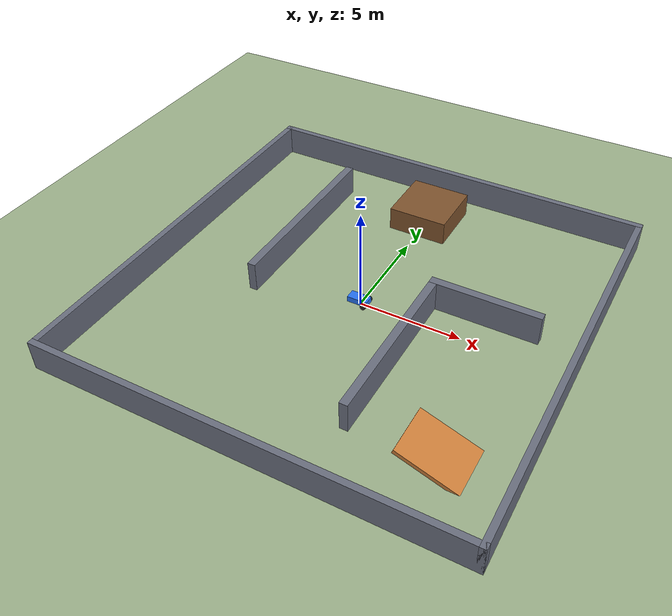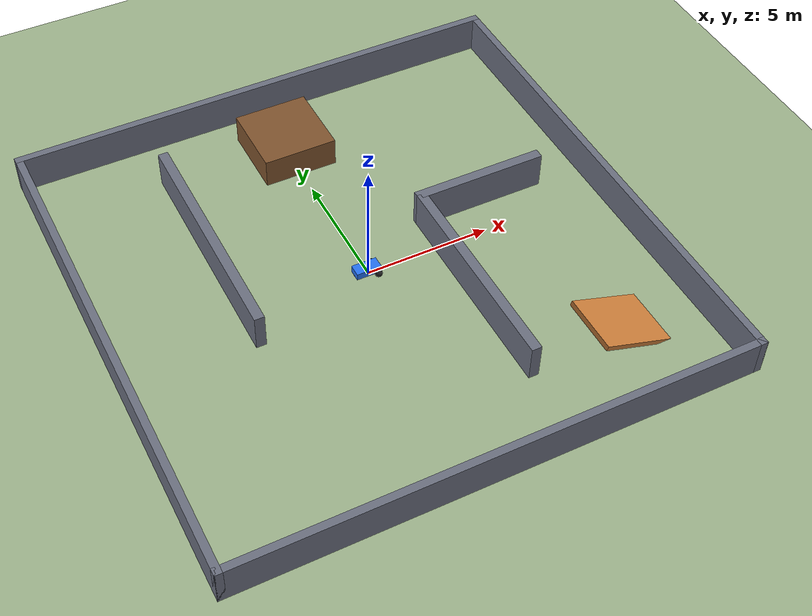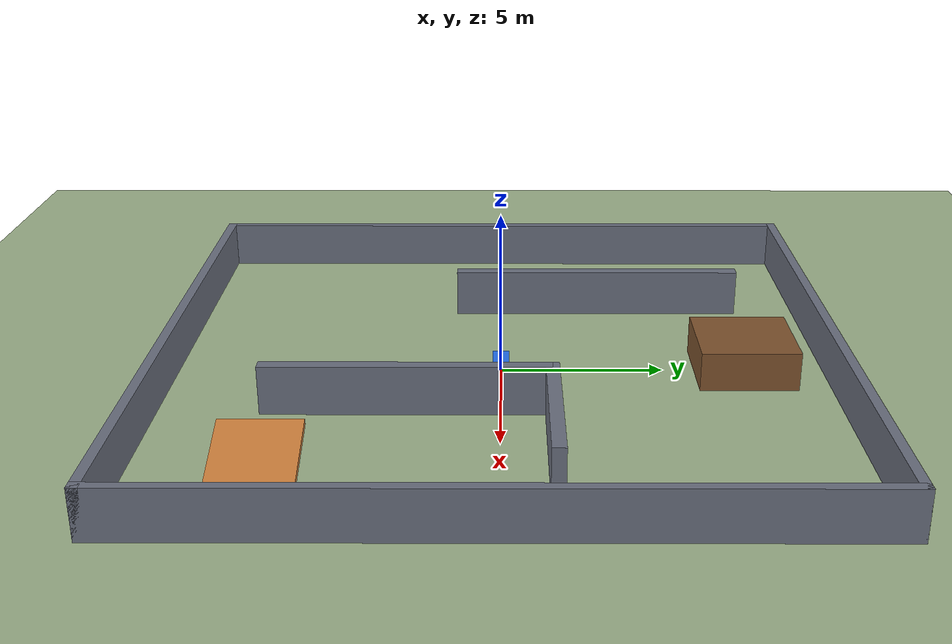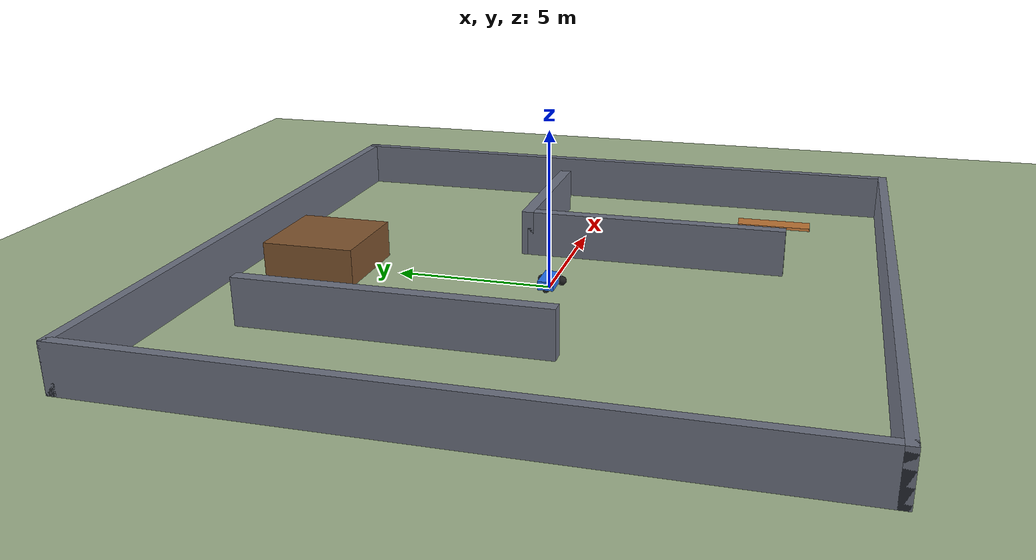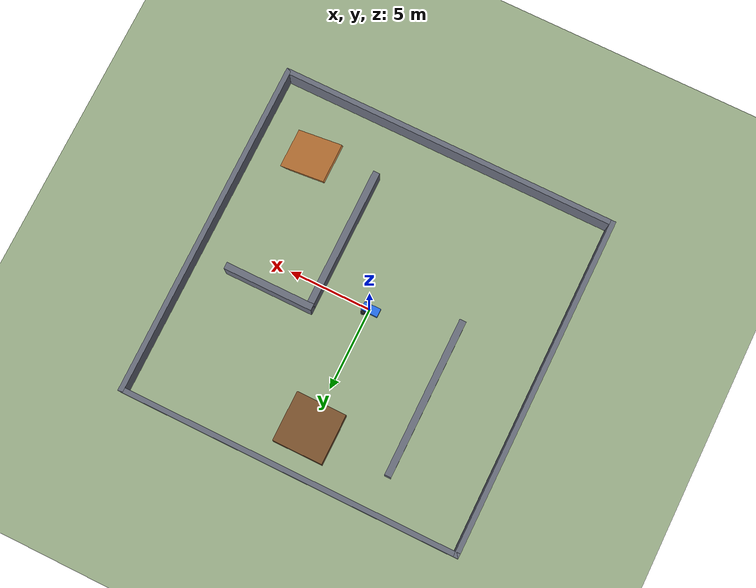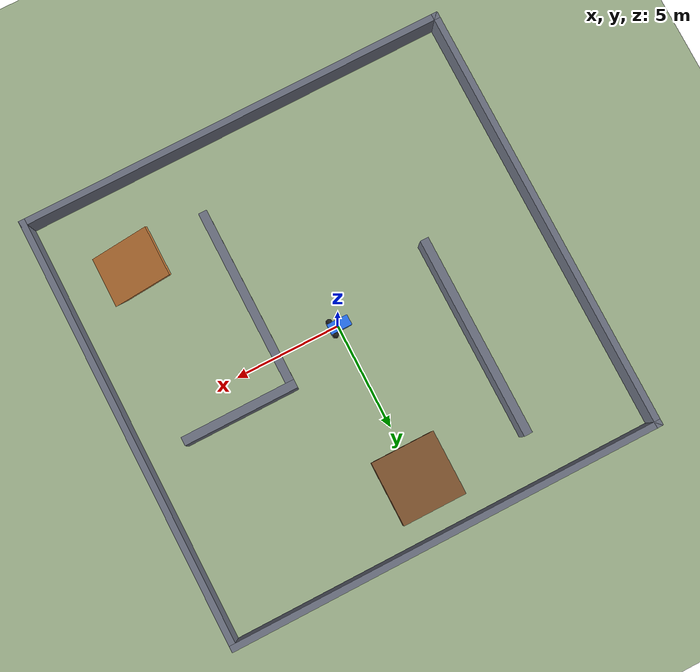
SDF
<?xml version="1.0" ?>
<!-- Generated by obstacle_avoidance.world_sdf — do not hand-edit obstacle poses.
     Change obstacle_map.OBSTACLES and regenerate. -->
<sdf version="1.8">
  <world name="obstacle_course">
    <physics name="1ms" type="ignored">
      <max_step_size>0.002</max_step_size>
      <real_time_factor>1.0</real_time_factor>
    </physics>
    <plugin filename="gz-sim-physics-system" name="gz::sim::systems::Physics"/>
    <plugin filename="gz-sim-user-commands-system" name="gz::sim::systems::UserCommands"/>
    <plugin filename="gz-sim-scene-broadcaster-system" name="gz::sim::systems::SceneBroadcaster"/>
    <plugin filename="gz-sim-contact-system" name="gz::sim::systems::Contact"/>

    <gravity>0 0 -9.8</gravity>
    <magnetic_field>6e-06 2.3e-05 -4.2e-05</magnetic_field>
    <atmosphere type="adiabatic"/>
    <scene>
      <ambient>0.4 0.4 0.45 1</ambient>
      <background>0.65 0.72 0.80 1</background>
      <shadows>true</shadows>
    </scene>

    <gui fullscreen="0">
      <plugin filename="MinimalScene" name="3D View">
        <gz-gui>
          <title>3D View</title>
          <property type="bool" key="showTitleBar">false</property>
          <property type="string" key="state">docked</property>
        </gz-gui>
        <engine>ogre2</engine>
        <scene>scene</scene>
        <ambient_light>0.6 0.6 0.6</ambient_light>
        <background_color>0.65 0.72 0.80</background_color>
        <camera_pose>-14 -14 16 0 0.55 0.78</camera_pose>
      </plugin>
      <plugin filename="EntityContextMenuPlugin" name="Entity context menu">
        <gz-gui>
          <property key="state" type="string">floating</property>
          <property key="width" type="double">5</property>
          <property key="height" type="double">5</property>
          <property key="showTitleBar" type="bool">false</property>
        </gz-gui>
      </plugin>
      <plugin filename="GzSceneManager" name="Scene Manager">
        <gz-gui>
          <property key="resizable" type="bool">false</property>
          <property key="width" type="double">5</property>
          <property key="height" type="double">5</property>
          <property key="state" type="string">floating</property>
          <property key="showTitleBar" type="bool">false</property>
        </gz-gui>
      </plugin>
      <plugin filename="InteractiveViewControl" name="Interactive view control">
        <gz-gui>
          <property key="resizable" type="bool">false</property>
          <property key="width" type="double">5</property>
          <property key="height" type="double">5</property>
          <property key="state" type="string">floating</property>
          <property key="showTitleBar" type="bool">false</property>
        </gz-gui>
      </plugin>
      <plugin filename="WorldControl" name="World control">
        <gz-gui>
          <title>World control</title>
          <property type="bool" key="showTitleBar">false</property>
          <property type="bool" key="resizable">false</property>
          <property type="double" key="height">72</property>
          <property type="double" key="width">121</property>
          <property type="double" key="z">1</property>
          <property type="string" key="state">floating</property>
          <anchors target="3D View">
            <line own="left" target="left"/>
            <line own="bottom" target="bottom"/>
          </anchors>
        </gz-gui>
        <play_pause>true</play_pause>
        <step>true</step>
        <start_paused>false</start_paused>
        <use_event>true</use_event>
      </plugin>
      <plugin filename="WorldStats" name="World stats">
        <gz-gui>
          <title>World stats</title>
          <property type="bool" key="showTitleBar">false</property>
          <property type="bool" key="resizable">false</property>
          <property type="double" key="height">110</property>
          <property type="double" key="width">290</property>
          <property type="double" key="z">1</property>
          <property type="string" key="state">floating</property>
          <anchors target="3D View">
            <line own="right" target="right"/>
            <line own="bottom" target="bottom"/>
          </anchors>
        </gz-gui>
        <sim_time>true</sim_time>
        <real_time>true</real_time>
        <real_time_factor>true</real_time_factor>
        <iterations>true</iterations>
      </plugin>
      <plugin filename="EntityTree" name="Entity tree">
        <gz-gui>
          <property type="string" key="state">docked_collapsed</property>
        </gz-gui>
      </plugin>
    </gui>

    <light type="directional" name="sun">
      <cast_shadows>true</cast_shadows>
      <pose>0 0 10 0 0 0</pose>
      <diffuse>0.9 0.9 0.85 1</diffuse>
      <specular>0.3 0.3 0.3 1</specular>
      <attenuation>
        <range>1000</range>
        <constant>0.9</constant>
        <linear>0.01</linear>
        <quadratic>0.001</quadratic>
      </attenuation>
      <direction>-0.4 0.2 -0.9</direction>
    </light>

    <model name="ground_plane">
      <static>true</static>
      <link name="link">
        <collision name="collision">
          <geometry>
            <plane>
              <normal>0 0 1</normal>
              <size>40 40</size>
            </plane>
          </geometry>
        </collision>
        <visual name="visual">
          <geometry>
            <plane>
              <normal>0 0 1</normal>
              <size>40 40</size>
            </plane>
          </geometry>
          <material>
            <ambient>0.62 0.70 0.55 1</ambient>
            <diffuse>0.62 0.70 0.55 1</diffuse>
            <specular>0.1 0.1 0.1 1</specular>
          </material>
        </visual>
      </link>
    </model>

    <model name="wall_north">
      <static>true</static>
      <pose>0.0 10.15 0.75 0.0 0.0 0.0</pose>
      <link name="link">
        <collision name="collision">
          <geometry>
            <box><size>20.6 0.3 1.5</size></box>
          </geometry>
        </collision>
        <visual name="visual">
          <geometry>
            <box><size>20.6 0.3 1.5</size></box>
          </geometry>
          <material>
            <ambient>0.42 0.44 0.5 1.0</ambient>
            <diffuse>0.42 0.44 0.5 1.0</diffuse>
            <specular>0.1 0.1 0.1 1</specular>
          </material>
        </visual>
      </link>
    </model>

    <model name="wall_south">
      <static>true</static>
      <pose>0.0 -10.15 0.75 0.0 0.0 0.0</pose>
      <link name="link">
        <collision name="collision">
          <geometry>
            <box><size>20.6 0.3 1.5</size></box>
          </geometry>
        </collision>
        <visual name="visual">
          <geometry>
            <box><size>20.6 0.3 1.5</size></box>
          </geometry>
          <material>
            <ambient>0.42 0.44 0.5 1.0</ambient>
            <diffuse>0.42 0.44 0.5 1.0</diffuse>
            <specular>0.1 0.1 0.1 1</specular>
          </material>
        </visual>
      </link>
    </model>

    <model name="wall_east">
      <static>true</static>
      <pose>10.15 0.0 0.75 0.0 0.0 0.0</pose>
      <link name="link">
        <collision name="collision">
          <geometry>
            <box><size>0.3 20.6 1.5</size></box>
          </geometry>
        </collision>
        <visual name="visual">
          <geometry>
            <box><size>0.3 20.6 1.5</size></box>
          </geometry>
          <material>
            <ambient>0.42 0.44 0.5 1.0</ambient>
            <diffuse>0.42 0.44 0.5 1.0</diffuse>
            <specular>0.1 0.1 0.1 1</specular>
          </material>
        </visual>
      </link>
    </model>

    <model name="wall_west">
      <static>true</static>
      <pose>-10.15 0.0 0.75 0.0 0.0 0.0</pose>
      <link name="link">
        <collision name="collision">
          <geometry>
            <box><size>0.3 20.6 1.5</size></box>
          </geometry>
        </collision>
        <visual name="visual">
          <geometry>
            <box><size>0.3 20.6 1.5</size></box>
          </geometry>
          <material>
            <ambient>0.42 0.44 0.5 1.0</ambient>
            <diffuse>0.42 0.44 0.5 1.0</diffuse>
            <specular>0.1 0.1 0.1 1</specular>
          </material>
        </visual>
      </link>
    </model>

    <model name="wall_a">
      <static>true</static>
      <pose>3.0 -2.75 0.75 0.0 0.0 0.0</pose>
      <link name="link">
        <collision name="collision">
          <geometry>
            <box><size>0.4 8.5 1.5</size></box>
          </geometry>
        </collision>
        <visual name="visual">
          <geometry>
            <box><size>0.4 8.5 1.5</size></box>
          </geometry>
          <material>
            <ambient>0.42 0.44 0.5 1.0</ambient>
            <diffuse>0.42 0.44 0.5 1.0</diffuse>
            <specular>0.1 0.1 0.1 1</specular>
          </material>
        </visual>
      </link>
    </model>

    <model name="wall_b">
      <static>true</static>
      <pose>5.5 1.5 0.75 0.0 0.0 0.0</pose>
      <link name="link">
        <collision name="collision">
          <geometry>
            <box><size>5.4 0.4 1.5</size></box>
          </geometry>
        </collision>
        <visual name="visual">
          <geometry>
            <box><size>5.4 0.4 1.5</size></box>
          </geometry>
          <material>
            <ambient>0.42 0.44 0.5 1.0</ambient>
            <diffuse>0.42 0.44 0.5 1.0</diffuse>
            <specular>0.1 0.1 0.1 1</specular>
          </material>
        </visual>
      </link>
    </model>

    <model name="wall_c">
      <static>true</static>
      <pose>-5.0 3.25 0.75 0.0 0.0 0.0</pose>
      <link name="link">
        <collision name="collision">
          <geometry>
            <box><size>0.4 9.5 1.5</size></box>
          </geometry>
        </collision>
        <visual name="visual">
          <geometry>
            <box><size>0.4 9.5 1.5</size></box>
          </geometry>
          <material>
            <ambient>0.42 0.44 0.5 1.0</ambient>
            <diffuse>0.42 0.44 0.5 1.0</diffuse>
            <specular>0.1 0.1 0.1 1</specular>
          </material>
        </visual>
      </link>
    </model>

    <model name="hill">
      <static>true</static>
      <pose>0.0 7.5 0.6 0.0 0.0 0.0</pose>
      <link name="link">
        <collision name="collision">
          <geometry>
            <box><size>3.0 3.0 1.2</size></box>
          </geometry>
        </collision>
        <visual name="visual">
          <geometry>
            <box><size>3.0 3.0 1.2</size></box>
          </geometry>
          <material>
            <ambient>0.5 0.33 0.18 1.0</ambient>
            <diffuse>0.5 0.33 0.18 1.0</diffuse>
            <specular>0.1 0.1 0.1 1</specular>
          </material>
        </visual>
      </link>
    </model>

    <model name="ramp">
      <static>true</static>
      <pose>7.0 -6.5 0.35 0.0 0.35 0.0</pose>
      <link name="link">
        <collision name="collision">
          <geometry>
            <box><size>3.2 2.4 0.2</size></box>
          </geometry>
        </collision>
        <visual name="visual">
          <geometry>
            <box><size>3.2 2.4 0.2</size></box>
          </geometry>
          <material>
            <ambient>0.78 0.48 0.22 1.0</ambient>
            <diffuse>0.78 0.48 0.22 1.0</diffuse>
            <specular>0.1 0.1 0.1 1</specular>
          </material>
        </visual>
      </link>
    </model>

    <model name="vehicle">
      <pose>0 0 0.1625 0 0 0</pose>
      <link name="chassis">
        <pose>-0.0757 0 0.0875 0 0 0</pose>
        <inertial>
          <mass>1.14</mass>
          <inertia>
            <ixx>0.016</ixx>
            <ixy>0</ixy>
            <ixz>0</ixz>
            <iyy>0.052</iyy>
            <iyz>0</iyz>
            <izz>0.060</izz>
          </inertia>
        </inertial>
        <visual name="visual">
          <geometry>
            <box><size>1.006 0.50 0.284</size></box>
          </geometry>
          <material>
            <ambient>0.15 0.45 0.95 1</ambient>
            <diffuse>0.15 0.45 0.95 1</diffuse>
            <specular>0.1 0.1 0.3 1</specular>
          </material>
        </visual>
        <collision name="collision">
          <geometry>
            <box><size>1.006 0.50 0.284</size></box>
          </geometry>
        </collision>
      </link>

      <link name="left_wheel">
        <pose>0.277 0.313 -0.0125 -1.5707 0 0</pose>
        <inertial>
          <mass>1.0</mass>
          <inertia>
            <ixx>0.009</ixx>
            <ixy>0</ixy>
            <ixz>0</ixz>
            <iyy>0.009</iyy>
            <iyz>0</iyz>
            <izz>0.008</izz>
          </inertia>
        </inertial>
        <visual name="visual">
          <geometry>
            <sphere><radius>0.15</radius></sphere>
          </geometry>
          <material>
            <ambient>0.12 0.12 0.12 1</ambient>
            <diffuse>0.12 0.12 0.12 1</diffuse>
          </material>
        </visual>
        <collision name="collision">
          <geometry>
            <sphere><radius>0.15</radius></sphere>
          </geometry>
          <surface>
            <friction>
              <ode>
                <mu>1</mu>
                <mu2>1</mu2>
                <slip1>0.035</slip1>
                <slip2>0</slip2>
                <fdir1>0 0 1</fdir1>
              </ode>
            </friction>
          </surface>
        </collision>
      </link>

      <link name="right_wheel">
        <pose>0.277 -0.313 -0.0125 -1.5707 0 0</pose>
        <inertial>
          <mass>1.0</mass>
          <inertia>
            <ixx>0.009</ixx>
            <ixy>0</ixy>
            <ixz>0</ixz>
            <iyy>0.009</iyy>
            <iyz>0</iyz>
            <izz>0.008</izz>
          </inertia>
        </inertial>
        <visual name="visual">
          <geometry>
            <sphere><radius>0.15</radius></sphere>
          </geometry>
          <material>
            <ambient>0.12 0.12 0.12 1</ambient>
            <diffuse>0.12 0.12 0.12 1</diffuse>
          </material>
        </visual>
        <collision name="collision">
          <geometry>
            <sphere><radius>0.15</radius></sphere>
          </geometry>
          <surface>
            <friction>
              <ode>
                <mu>1</mu>
                <mu2>1</mu2>
                <slip1>0.035</slip1>
                <slip2>0</slip2>
                <fdir1>0 0 1</fdir1>
              </ode>
            </friction>
          </surface>
        </collision>
      </link>

      <link name="caster">
        <pose>-0.479 0 -0.0625 0 0 0</pose>
        <inertial>
          <mass>0.4</mass>
          <inertia>
            <ixx>0.004</ixx>
            <ixy>0</ixy>
            <ixz>0</ixz>
            <iyy>0.004</iyy>
            <iyz>0</iyz>
            <izz>0.004</izz>
          </inertia>
        </inertial>
        <visual name="visual">
          <geometry>
            <sphere><radius>0.10</radius></sphere>
          </geometry>
          <material>
            <ambient>0.2 0.2 0.2 1</ambient>
            <diffuse>0.2 0.2 0.2 1</diffuse>
          </material>
        </visual>
        <collision name="collision">
          <geometry>
            <sphere><radius>0.10</radius></sphere>
          </geometry>
        </collision>
      </link>

      <joint name="left_wheel_joint" type="revolute">
        <parent>chassis</parent>
        <child>left_wheel</child>
        <axis>
          <xyz>0 0 1</xyz>
          <limit>
            <lower>-1.79769e+308</lower>
            <upper>1.79769e+308</upper>
          </limit>
        </axis>
      </joint>
      <joint name="right_wheel_joint" type="revolute">
        <parent>chassis</parent>
        <child>right_wheel</child>
        <axis>
          <xyz>0 0 1</xyz>
          <limit>
            <lower>-1.79769e+308</lower>
            <upper>1.79769e+308</upper>
          </limit>
        </axis>
      </joint>
      <joint name="caster_wheel" type="ball">
        <parent>chassis</parent>
        <child>caster</child>
      </joint>

      <plugin filename="gz-sim-diff-drive-system" name="gz::sim::systems::DiffDrive">
        <left_joint>left_wheel_joint</left_joint>
        <right_joint>right_wheel_joint</right_joint>
        <wheel_separation>0.626</wheel_separation>
        <wheel_radius>0.15</wheel_radius>
        <topic>/cmd_vel</topic>
        <odom_topic>/odom</odom_topic>
        <tf_topic>/tf</tf_topic>
        <frame_id>odom</frame_id>
        <child_frame_id>base_link</child_frame_id>
        <odom_publish_frequency>50</odom_publish_frequency>
        <max_linear_acceleration>2</max_linear_acceleration>
        <min_linear_acceleration>-2</min_linear_acceleration>
        <max_angular_acceleration>3</max_angular_acceleration>
        <min_angular_acceleration>-3</min_angular_acceleration>
        <max_linear_velocity>0.8</max_linear_velocity>
        <min_linear_velocity>-0.8</min_linear_velocity>
        <max_angular_velocity>1.5</max_angular_velocity>
        <min_angular_velocity>-1.5</min_angular_velocity>
      </plugin>
    </model>

  </world>
</sdf>
